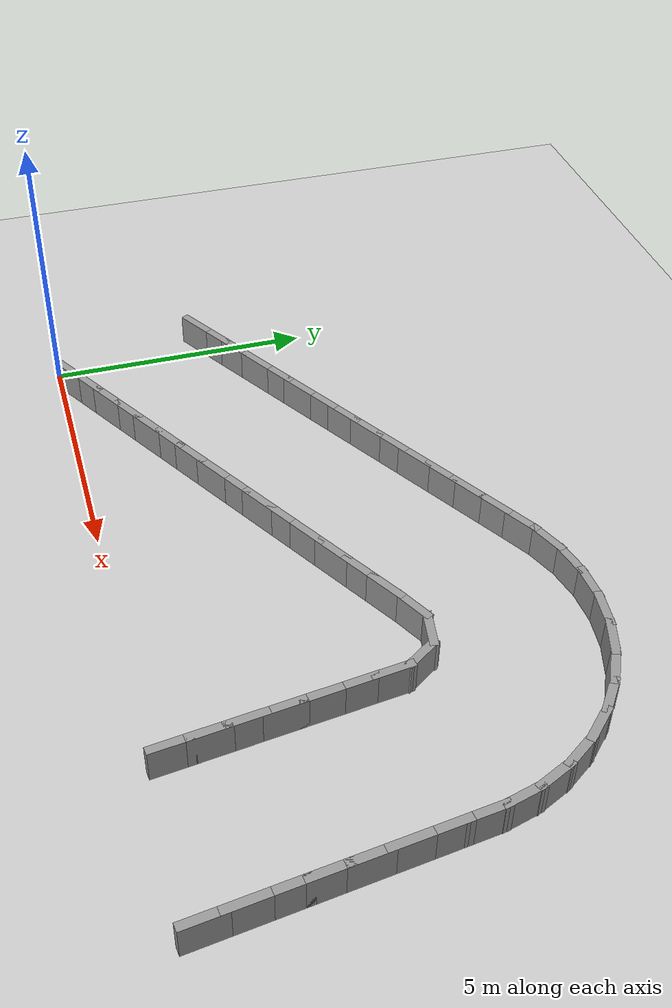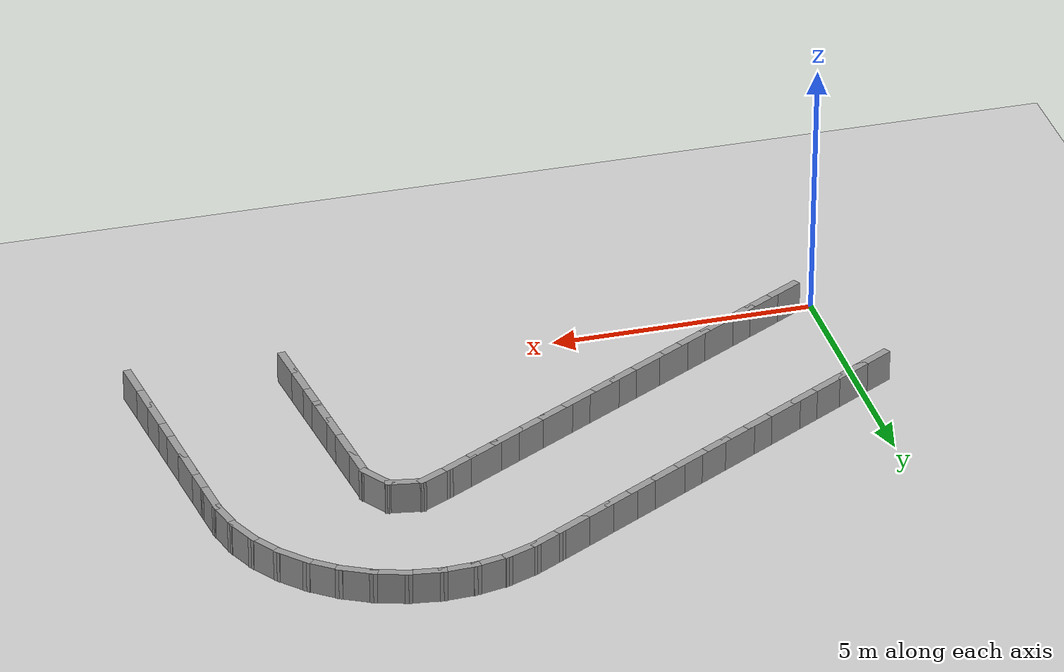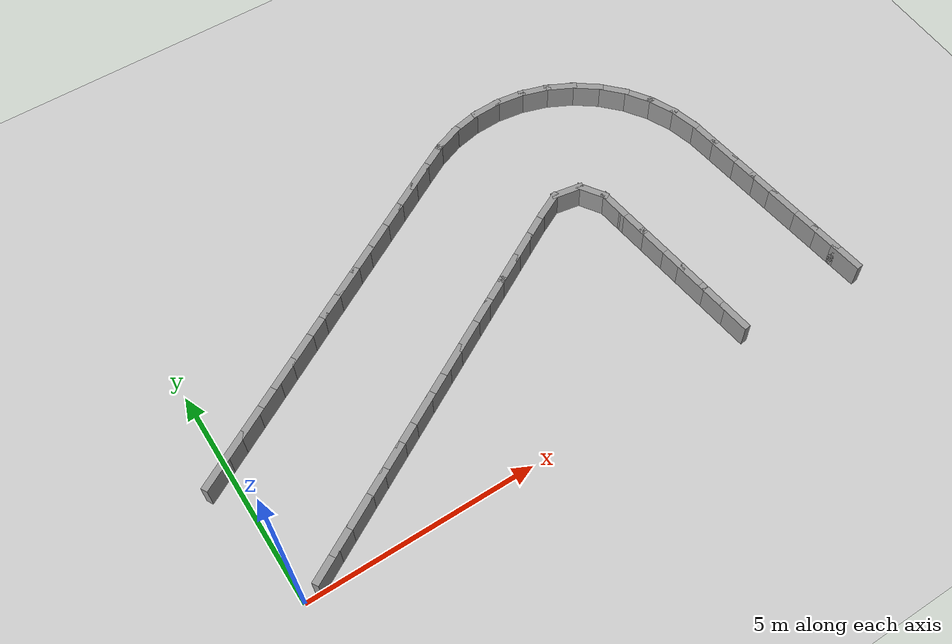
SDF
<sdf version="1.7">
 <world name="default">
  <model name="ground_plane">
   <static>1</static>
   <link name="link">
    <collision name="collision">
     <geometry><plane><normal>0 0 1</normal><size>100 100</size></plane></geometry>
     <surface><friction><ode><mu>100</mu><mu2>50</mu2></ode></friction></surface>
    </collision>
    <visual name="visual">
     <cast_shadows>0</cast_shadows>
     <geometry><plane><normal>0 0 1</normal><size>100 100</size></plane></geometry>
     <material>
      <script><uri>file://media/materials/scripts/gazebo.material</uri><name>Gazebo/Grey</name></script>
     </material>
    </visual>
   </link>
  </model>
  <model name="rand_turn_11">
   <link name="Wall_11">
    <collision name="Wall_11_Collision">
     <geometry><box><size>0.7500 0.1500 0.6000</size></box></geometry>
     <pose>0 0 0.3000 0 -0 0</pose>
    </collision>
    <visual name="Wall_11_Visual">
     <pose>0 0 0.3000 0 -0 0</pose>
     <geometry><box><size>0.7500 0.1500 0.6000</size></box></geometry>
     <material>
      <script><uri>file://media/materials/scripts/gazebo.material</uri><name>Gazebo/Grey</name></script>
      <ambient>1 1 1 1</ambient>
     </material>
    </visual>
    <pose>-0.2502 2.9254 0 0 -0 0.51695</pose>
   </link>
   <link name="Wall_12">
    <collision name="Wall_12_Collision">
     <geometry><box><size>0.7500 0.1500 0.6000</size></box></geometry>
     <pose>0 0 0.3000 0 -0 0</pose>
    </collision>
    <visual name="Wall_12_Visual">
     <pose>0 0 0.3000 0 -0 0</pose>
     <geometry><box><size>0.7500 0.1500 0.6000</size></box></geometry>
     <material>
      <script><uri>file://media/materials/scripts/gazebo.material</uri><name>Gazebo/Grey</name></script>
      <ambient>1 1 1 1</ambient>
     </material>
    </visual>
    <pose>0.2714 3.2220 0 0 -0 0.51695</pose>
   </link>
   <link name="Wall_13">
    <collision name="Wall_13_Collision">
     <geometry><box><size>0.7500 0.1500 0.6000</size></box></geometry>
     <pose>0 0 0.3000 0 -0 0</pose>
    </collision>
    <visual name="Wall_13_Visual">
     <pose>0 0 0.3000 0 -0 0</pose>
     <geometry><box><size>0.7500 0.1500 0.6000</size></box></geometry>
     <material>
      <script><uri>file://media/materials/scripts/gazebo.material</uri><name>Gazebo/Grey</name></script>
      <ambient>1 1 1 1</ambient>
     </material>
    </visual>
    <pose>0.7930 3.5185 0 0 -0 0.51695</pose>
   </link>
   <link name="Wall_14">
    <collision name="Wall_14_Collision">
     <geometry><box><size>0.7500 0.1500 0.6000</size></box></geometry>
     <pose>0 0 0.3000 0 -0 0</pose>
    </collision>
    <visual name="Wall_14_Visual">
     <pose>0 0 0.3000 0 -0 0</pose>
     <geometry><box><size>0.7500 0.1500 0.6000</size></box></geometry>
     <material>
      <script><uri>file://media/materials/scripts/gazebo.material</uri><name>Gazebo/Grey</name></script>
      <ambient>1 1 1 1</ambient>
     </material>
    </visual>
    <pose>1.3146 3.8150 0 0 -0 0.51695</pose>
   </link>
   <link name="Wall_15">
    <collision name="Wall_15_Collision">
     <geometry><box><size>0.7500 0.1500 0.6000</size></box></geometry>
     <pose>0 0 0.3000 0 -0 0</pose>
    </collision>
    <visual name="Wall_15_Visual">
     <pose>0 0 0.3000 0 -0 0</pose>
     <geometry><box><size>0.7500 0.1500 0.6000</size></box></geometry>
     <material>
      <script><uri>file://media/materials/scripts/gazebo.material</uri><name>Gazebo/Grey</name></script>
      <ambient>1 1 1 1</ambient>
     </material>
    </visual>
    <pose>1.8362 4.1116 0 0 -0 0.51695</pose>
   </link>
   <link name="Wall_16">
    <collision name="Wall_16_Collision">
     <geometry><box><size>0.7500 0.1500 0.6000</size></box></geometry>
     <pose>0 0 0.3000 0 -0 0</pose>
    </collision>
    <visual name="Wall_16_Visual">
     <pose>0 0 0.3000 0 -0 0</pose>
     <geometry><box><size>0.7500 0.1500 0.6000</size></box></geometry>
     <material>
      <script><uri>file://media/materials/scripts/gazebo.material</uri><name>Gazebo/Grey</name></script>
      <ambient>1 1 1 1</ambient>
     </material>
    </visual>
    <pose>2.3578 4.4081 0 0 -0 0.51695</pose>
   </link>
   <link name="Wall_17">
    <collision name="Wall_17_Collision">
     <geometry><box><size>0.7500 0.1500 0.6000</size></box></geometry>
     <pose>0 0 0.3000 0 -0 0</pose>
    </collision>
    <visual name="Wall_17_Visual">
     <pose>0 0 0.3000 0 -0 0</pose>
     <geometry><box><size>0.7500 0.1500 0.6000</size></box></geometry>
     <material>
      <script><uri>file://media/materials/scripts/gazebo.material</uri><name>Gazebo/Grey</name></script>
      <ambient>1 1 1 1</ambient>
     </material>
    </visual>
    <pose>2.8794 4.7047 0 0 -0 0.51695</pose>
   </link>
   <link name="Wall_18">
    <collision name="Wall_18_Collision">
     <geometry><box><size>0.7500 0.1500 0.6000</size></box></geometry>
     <pose>0 0 0.3000 0 -0 0</pose>
    </collision>
    <visual name="Wall_18_Visual">
     <pose>0 0 0.3000 0 -0 0</pose>
     <geometry><box><size>0.7500 0.1500 0.6000</size></box></geometry>
     <material>
      <script><uri>file://media/materials/scripts/gazebo.material</uri><name>Gazebo/Grey</name></script>
      <ambient>1 1 1 1</ambient>
     </material>
    </visual>
    <pose>3.4010 5.0012 0 0 -0 0.51695</pose>
   </link>
   <link name="Wall_19">
    <collision name="Wall_19_Collision">
     <geometry><box><size>0.7500 0.1500 0.6000</size></box></geometry>
     <pose>0 0 0.3000 0 -0 0</pose>
    </collision>
    <visual name="Wall_19_Visual">
     <pose>0 0 0.3000 0 -0 0</pose>
     <geometry><box><size>0.7500 0.1500 0.6000</size></box></geometry>
     <material>
      <script><uri>file://media/materials/scripts/gazebo.material</uri><name>Gazebo/Grey</name></script>
      <ambient>1 1 1 1</ambient>
     </material>
    </visual>
    <pose>3.9226 5.2977 0 0 -0 0.51695</pose>
   </link>
   <link name="Wall_20">
    <collision name="Wall_20_Collision">
     <geometry><box><size>0.7500 0.1500 0.6000</size></box></geometry>
     <pose>0 0 0.3000 0 -0 0</pose>
    </collision>
    <visual name="Wall_20_Visual">
     <pose>0 0 0.3000 0 -0 0</pose>
     <geometry><box><size>0.7500 0.1500 0.6000</size></box></geometry>
     <material>
      <script><uri>file://media/materials/scripts/gazebo.material</uri><name>Gazebo/Grey</name></script>
      <ambient>1 1 1 1</ambient>
     </material>
    </visual>
    <pose>4.4442 5.5943 0 0 -0 0.51695</pose>
   </link>
   <link name="Wall_21">
    <collision name="Wall_21_Collision">
     <geometry><box><size>0.7500 0.1500 0.6000</size></box></geometry>
     <pose>0 0 0.3000 0 -0 0</pose>
    </collision>
    <visual name="Wall_21_Visual">
     <pose>0 0 0.3000 0 -0 0</pose>
     <geometry><box><size>0.7500 0.1500 0.6000</size></box></geometry>
     <material>
      <script><uri>file://media/materials/scripts/gazebo.material</uri><name>Gazebo/Grey</name></script>
      <ambient>1 1 1 1</ambient>
     </material>
    </visual>
    <pose>4.9658 5.8908 0 0 -0 0.51695</pose>
   </link>
   <link name="Wall_22">
    <collision name="Wall_22_Collision">
     <geometry><box><size>0.7500 0.1500 0.6000</size></box></geometry>
     <pose>0 0 0.3000 0 -0 0</pose>
    </collision>
    <visual name="Wall_22_Visual">
     <pose>0 0 0.3000 0 -0 0</pose>
     <geometry><box><size>0.7500 0.1500 0.6000</size></box></geometry>
     <material>
      <script><uri>file://media/materials/scripts/gazebo.material</uri><name>Gazebo/Grey</name></script>
      <ambient>1 1 1 1</ambient>
     </material>
    </visual>
    <pose>5.4874 6.1874 0 0 -0 0.51695</pose>
   </link>
   <link name="Wall_23">
    <collision name="Wall_23_Collision">
     <geometry><box><size>0.7500 0.1500 0.6000</size></box></geometry>
     <pose>0 0 0.3000 0 -0 0</pose>
    </collision>
    <visual name="Wall_23_Visual">
     <pose>0 0 0.3000 0 -0 0</pose>
     <geometry><box><size>0.7500 0.1500 0.6000</size></box></geometry>
     <material>
      <script><uri>file://media/materials/scripts/gazebo.material</uri><name>Gazebo/Grey</name></script>
      <ambient>1 1 1 1</ambient>
     </material>
    </visual>
    <pose>6.0089 6.4839 0 0 -0 0.51695</pose>
   </link>
   <link name="Wall_24">
    <collision name="Wall_24_Collision">
     <geometry><box><size>0.7500 0.1500 0.6000</size></box></geometry>
     <pose>0 0 0.3000 0 -0 0</pose>
    </collision>
    <visual name="Wall_24_Visual">
     <pose>0 0 0.3000 0 -0 0</pose>
     <geometry><box><size>0.7500 0.1500 0.6000</size></box></geometry>
     <material>
      <script><uri>file://media/materials/scripts/gazebo.material</uri><name>Gazebo/Grey</name></script>
      <ambient>1 1 1 1</ambient>
     </material>
    </visual>
    <pose>6.5305 6.7805 0 0 -0 0.51695</pose>
   </link>
   <link name="Wall_25">
    <collision name="Wall_25_Collision">
     <geometry><box><size>0.7499 0.1500 0.6000</size></box></geometry>
     <pose>0 0 0.3000 0 -0 0</pose>
    </collision>
    <visual name="Wall_25_Visual">
     <pose>0 0 0.3000 0 -0 0</pose>
     <geometry><box><size>0.7499 0.1500 0.6000</size></box></geometry>
     <material>
      <script><uri>file://media/materials/scripts/gazebo.material</uri><name>Gazebo/Grey</name></script>
      <ambient>1 1 1 1</ambient>
     </material>
    </visual>
    <pose>7.0536 7.0742 0 0 -0 0.50648</pose>
   </link>
   <link name="Wall_26">
    <collision name="Wall_26_Collision">
     <geometry><box><size>0.7492 0.1500 0.6000</size></box></geometry>
     <pose>0 0 0.3000 0 -0 0</pose>
    </collision>
    <visual name="Wall_26_Visual">
     <pose>0 0 0.3000 0 -0 0</pose>
     <geometry><box><size>0.7492 0.1500 0.6000</size></box></geometry>
     <material>
      <script><uri>file://media/materials/scripts/gazebo.material</uri><name>Gazebo/Grey</name></script>
      <ambient>1 1 1 1</ambient>
     </material>
    </visual>
    <pose>7.5946 7.3297 0 0 -0 0.37580</pose>
   </link>
   <link name="Wall_27">
    <collision name="Wall_27_Collision">
     <geometry><box><size>0.7492 0.1500 0.6000</size></box></geometry>
     <pose>0 0 0.3000 0 -0 0</pose>
    </collision>
    <visual name="Wall_27_Visual">
     <pose>0 0 0.3000 0 -0 0</pose>
     <geometry><box><size>0.7492 0.1500 0.6000</size></box></geometry>
     <material>
      <script><uri>file://media/materials/scripts/gazebo.material</uri><name>Gazebo/Grey</name></script>
      <ambient>1 1 1 1</ambient>
     </material>
    </visual>
    <pose>8.1667 7.5008 0 0 -0 0.20546</pose>
   </link>
   <link name="Wall_28">
    <collision name="Wall_28_Collision">
     <geometry><box><size>0.7492 0.1500 0.6000</size></box></geometry>
     <pose>0 0 0.3000 0 -0 0</pose>
    </collision>
    <visual name="Wall_28_Visual">
     <pose>0 0 0.3000 0 -0 0</pose>
     <geometry><box><size>0.7492 0.1500 0.6000</size></box></geometry>
     <material>
      <script><uri>file://media/materials/scripts/gazebo.material</uri><name>Gazebo/Grey</name></script>
      <ambient>1 1 1 1</ambient>
     </material>
    </visual>
    <pose>8.7594 7.5732 0 0 -0 0.03778</pose>
   </link>
   <link name="Wall_29">
    <collision name="Wall_29_Collision">
     <geometry><box><size>0.7493 0.1500 0.6000</size></box></geometry>
     <pose>0 0 0.3000 0 -0 0</pose>
    </collision>
    <visual name="Wall_29_Visual">
     <pose>0 0 0.3000 0 -0 0</pose>
     <geometry><box><size>0.7493 0.1500 0.6000</size></box></geometry>
     <material>
      <script><uri>file://media/materials/scripts/gazebo.material</uri><name>Gazebo/Grey</name></script>
      <ambient>1 1 1 1</ambient>
     </material>
    </visual>
    <pose>9.3557 7.5445 0 0 -0 -0.13394</pose>
   </link>
   <link name="Wall_30">
    <collision name="Wall_30_Collision">
     <geometry><box><size>0.7492 0.1500 0.6000</size></box></geometry>
     <pose>0 0 0.3000 0 -0 0</pose>
    </collision>
    <visual name="Wall_30_Visual">
     <pose>0 0 0.3000 0 -0 0</pose>
     <geometry><box><size>0.7492 0.1500 0.6000</size></box></geometry>
     <material>
      <script><uri>file://media/materials/scripts/gazebo.material</uri><name>Gazebo/Grey</name></script>
      <ambient>1 1 1 1</ambient>
     </material>
    </visual>
    <pose>9.9386 7.4153 0 0 -0 -0.30248</pose>
   </link>
   <link name="Wall_31">
    <collision name="Wall_31_Collision">
     <geometry><box><size>0.7493 0.1500 0.6000</size></box></geometry>
     <pose>0 0 0.3000 0 -0 0</pose>
    </collision>
    <visual name="Wall_31_Visual">
     <pose>0 0 0.3000 0 -0 0</pose>
     <geometry><box><size>0.7493 0.1500 0.6000</size></box></geometry>
     <material>
      <script><uri>file://media/materials/scripts/gazebo.material</uri><name>Gazebo/Grey</name></script>
      <ambient>1 1 1 1</ambient>
     </material>
    </visual>
    <pose>10.4916 7.1900 0 0 -0 -0.47110</pose>
   </link>
   <link name="Wall_32">
    <collision name="Wall_32_Collision">
     <geometry><box><size>0.7492 0.1500 0.6000</size></box></geometry>
     <pose>0 0 0.3000 0 -0 0</pose>
    </collision>
    <visual name="Wall_32_Visual">
     <pose>0 0 0.3000 0 -0 0</pose>
     <geometry><box><size>0.7492 0.1500 0.6000</size></box></geometry>
     <material>
      <script><uri>file://media/materials/scripts/gazebo.material</uri><name>Gazebo/Grey</name></script>
      <ambient>1 1 1 1</ambient>
     </material>
    </visual>
    <pose>10.9984 6.8745 0 0 -0 -0.64274</pose>
   </link>
   <link name="Wall_33">
    <collision name="Wall_33_Collision">
     <geometry><box><size>0.7492 0.1500 0.6000</size></box></geometry>
     <pose>0 0 0.3000 0 -0 0</pose>
    </collision>
    <visual name="Wall_33_Visual">
     <pose>0 0 0.3000 0 -0 0</pose>
     <geometry><box><size>0.7492 0.1500 0.6000</size></box></geometry>
     <material>
      <script><uri>file://media/materials/scripts/gazebo.material</uri><name>Gazebo/Grey</name></script>
      <ambient>1 1 1 1</ambient>
     </material>
    </visual>
    <pose>11.4448 6.4778 0 0 -0 -0.81042</pose>
   </link>
   <link name="Wall_34">
    <collision name="Wall_34_Collision">
     <geometry><box><size>0.7492 0.1500 0.6000</size></box></geometry>
     <pose>0 0 0.3000 0 -0 0</pose>
    </collision>
    <visual name="Wall_34_Visual">
     <pose>0 0 0.3000 0 -0 0</pose>
     <geometry><box><size>0.7492 0.1500 0.6000</size></box></geometry>
     <material>
      <script><uri>file://media/materials/scripts/gazebo.material</uri><name>Gazebo/Grey</name></script>
      <ambient>1 1 1 1</ambient>
     </material>
    </visual>
    <pose>11.8179 6.0117 0 0 -0 -0.98085</pose>
   </link>
   <link name="Wall_35">
    <collision name="Wall_35_Collision">
     <geometry><box><size>0.7492 0.1500 0.6000</size></box></geometry>
     <pose>0 0 0.3000 0 -0 0</pose>
    </collision>
    <visual name="Wall_35_Visual">
     <pose>0 0 0.3000 0 -0 0</pose>
     <geometry><box><size>0.7492 0.1500 0.6000</size></box></geometry>
     <material>
      <script><uri>file://media/materials/scripts/gazebo.material</uri><name>Gazebo/Grey</name></script>
      <ambient>1 1 1 1</ambient>
     </material>
    </visual>
    <pose>12.1068 5.4892 0 0 -0 -1.15068</pose>
   </link>
   <link name="Wall_36">
    <collision name="Wall_36_Collision">
     <geometry><box><size>0.7492 0.1500 0.6000</size></box></geometry>
     <pose>0 0 0.3000 0 -0 0</pose>
    </collision>
    <visual name="Wall_36_Visual">
     <pose>0 0 0.3000 0 -0 0</pose>
     <geometry><box><size>0.7492 0.1500 0.6000</size></box></geometry>
     <material>
      <script><uri>file://media/materials/scripts/gazebo.material</uri><name>Gazebo/Grey</name></script>
      <ambient>1 1 1 1</ambient>
     </material>
    </visual>
    <pose>12.3037 4.9255 0 0 -0 -1.31870</pose>
   </link>
   <link name="Wall_37">
    <collision name="Wall_37_Collision">
     <geometry><box><size>0.7500 0.1500 0.6000</size></box></geometry>
     <pose>0 0 0.3000 0 -0 0</pose>
    </collision>
    <visual name="Wall_37_Visual">
     <pose>0 0 0.3000 0 -0 0</pose>
     <geometry><box><size>0.7500 0.1500 0.6000</size></box></geometry>
     <material>
      <script><uri>file://media/materials/scripts/gazebo.material</uri><name>Gazebo/Grey</name></script>
      <ambient>1 1 1 1</ambient>
     </material>
    </visual>
    <pose>12.4158 4.3377 0 0 -0 -1.44592</pose>
   </link>
   <link name="Wall_38">
    <collision name="Wall_38_Collision">
     <geometry><box><size>0.7500 0.1500 0.6000</size></box></geometry>
     <pose>0 0 0.3000 0 -0 0</pose>
    </collision>
    <visual name="Wall_38_Visual">
     <pose>0 0 0.3000 0 -0 0</pose>
     <geometry><box><size>0.7500 0.1500 0.6000</size></box></geometry>
     <material>
      <script><uri>file://media/materials/scripts/gazebo.material</uri><name>Gazebo/Grey</name></script>
      <ambient>1 1 1 1</ambient>
     </material>
    </visual>
    <pose>12.4898 3.7423 0 0 -0 -1.44849</pose>
   </link>
   <link name="Wall_39">
    <collision name="Wall_39_Collision">
     <geometry><box><size>0.7500 0.1500 0.6000</size></box></geometry>
     <pose>0 0 0.3000 0 -0 0</pose>
    </collision>
    <visual name="Wall_39_Visual">
     <pose>0 0 0.3000 0 -0 0</pose>
     <geometry><box><size>0.7500 0.1500 0.6000</size></box></geometry>
     <material>
      <script><uri>file://media/materials/scripts/gazebo.material</uri><name>Gazebo/Grey</name></script>
      <ambient>1 1 1 1</ambient>
     </material>
    </visual>
    <pose>12.5630 3.1468 0 0 -0 -1.44849</pose>
   </link>
   <link name="Wall_40">
    <collision name="Wall_40_Collision">
     <geometry><box><size>0.7500 0.1500 0.6000</size></box></geometry>
     <pose>0 0 0.3000 0 -0 0</pose>
    </collision>
    <visual name="Wall_40_Visual">
     <pose>0 0 0.3000 0 -0 0</pose>
     <geometry><box><size>0.7500 0.1500 0.6000</size></box></geometry>
     <material>
      <script><uri>file://media/materials/scripts/gazebo.material</uri><name>Gazebo/Grey</name></script>
      <ambient>1 1 1 1</ambient>
     </material>
    </visual>
    <pose>12.6362 2.5513 0 0 -0 -1.44849</pose>
   </link>
   <link name="Wall_41">
    <collision name="Wall_41_Collision">
     <geometry><box><size>0.7500 0.1500 0.6000</size></box></geometry>
     <pose>0 0 0.3000 0 -0 0</pose>
    </collision>
    <visual name="Wall_41_Visual">
     <pose>0 0 0.3000 0 -0 0</pose>
     <geometry><box><size>0.7500 0.1500 0.6000</size></box></geometry>
     <material>
      <script><uri>file://media/materials/scripts/gazebo.material</uri><name>Gazebo/Grey</name></script>
      <ambient>1 1 1 1</ambient>
     </material>
    </visual>
    <pose>12.7094 1.9557 0 0 -0 -1.44849</pose>
   </link>
   <link name="Wall_42">
    <collision name="Wall_42_Collision">
     <geometry><box><size>0.7500 0.1500 0.6000</size></box></geometry>
     <pose>0 0 0.3000 0 -0 0</pose>
    </collision>
    <visual name="Wall_42_Visual">
     <pose>0 0 0.3000 0 -0 0</pose>
     <geometry><box><size>0.7500 0.1500 0.6000</size></box></geometry>
     <material>
      <script><uri>file://media/materials/scripts/gazebo.material</uri><name>Gazebo/Grey</name></script>
      <ambient>1 1 1 1</ambient>
     </material>
    </visual>
    <pose>12.7826 1.3602 0 0 -0 -1.44849</pose>
   </link>
   <link name="Wall_43">
    <collision name="Wall_43_Collision">
     <geometry><box><size>0.7500 0.1500 0.6000</size></box></geometry>
     <pose>0 0 0.3000 0 -0 0</pose>
    </collision>
    <visual name="Wall_43_Visual">
     <pose>0 0 0.3000 0 -0 0</pose>
     <geometry><box><size>0.7500 0.1500 0.6000</size></box></geometry>
     <material>
      <script><uri>file://media/materials/scripts/gazebo.material</uri><name>Gazebo/Grey</name></script>
      <ambient>1 1 1 1</ambient>
     </material>
    </visual>
    <pose>12.8558 0.7647 0 0 -0 -1.44849</pose>
   </link>
   <link name="Wall_44">
    <collision name="Wall_44_Collision">
     <geometry><box><size>0.7500 0.1500 0.6000</size></box></geometry>
     <pose>0 0 0.3000 0 -0 0</pose>
    </collision>
    <visual name="Wall_44_Visual">
     <pose>0 0 0.3000 0 -0 0</pose>
     <geometry><box><size>0.7500 0.1500 0.6000</size></box></geometry>
     <material>
      <script><uri>file://media/materials/scripts/gazebo.material</uri><name>Gazebo/Grey</name></script>
      <ambient>1 1 1 1</ambient>
     </material>
    </visual>
    <pose>12.9290 0.1692 0 0 -0 -1.44849</pose>
   </link>
   <link name="Wall_109">
    <collision name="Wall_109_Collision">
     <geometry><box><size>0.7500 0.1500 0.6000</size></box></geometry>
     <pose>0 0 0.3000 0 -0 0</pose>
    </collision>
    <visual name="Wall_109_Visual">
     <pose>0 0 0.3000 0 -0 0</pose>
     <geometry><box><size>0.7500 0.1500 0.6000</size></box></geometry>
     <material>
      <script><uri>file://media/materials/scripts/gazebo.material</uri><name>Gazebo/Grey</name></script>
      <ambient>1 1 1 1</ambient>
     </material>
    </visual>
    <pose>0.6161 0.1876 0 0 -0 0.51695</pose>
   </link>
   <link name="Wall_110">
    <collision name="Wall_110_Collision">
     <geometry><box><size>0.7500 0.1500 0.6000</size></box></geometry>
     <pose>0 0 0.3000 0 -0 0</pose>
    </collision>
    <visual name="Wall_110_Visual">
     <pose>0 0 0.3000 0 -0 0</pose>
     <geometry><box><size>0.7500 0.1500 0.6000</size></box></geometry>
     <material>
      <script><uri>file://media/materials/scripts/gazebo.material</uri><name>Gazebo/Grey</name></script>
      <ambient>1 1 1 1</ambient>
     </material>
    </visual>
    <pose>1.1377 0.4842 0 0 -0 0.51695</pose>
   </link>
   <link name="Wall_111">
    <collision name="Wall_111_Collision">
     <geometry><box><size>0.7500 0.1500 0.6000</size></box></geometry>
     <pose>0 0 0.3000 0 -0 0</pose>
    </collision>
    <visual name="Wall_111_Visual">
     <pose>0 0 0.3000 0 -0 0</pose>
     <geometry><box><size>0.7500 0.1500 0.6000</size></box></geometry>
     <material>
      <script><uri>file://media/materials/scripts/gazebo.material</uri><name>Gazebo/Grey</name></script>
      <ambient>1 1 1 1</ambient>
     </material>
    </visual>
    <pose>1.6593 0.7807 0 0 -0 0.51695</pose>
   </link>
   <link name="Wall_112">
    <collision name="Wall_112_Collision">
     <geometry><box><size>0.7500 0.1500 0.6000</size></box></geometry>
     <pose>0 0 0.3000 0 -0 0</pose>
    </collision>
    <visual name="Wall_112_Visual">
     <pose>0 0 0.3000 0 -0 0</pose>
     <geometry><box><size>0.7500 0.1500 0.6000</size></box></geometry>
     <material>
      <script><uri>file://media/materials/scripts/gazebo.material</uri><name>Gazebo/Grey</name></script>
      <ambient>1 1 1 1</ambient>
     </material>
    </visual>
    <pose>2.1809 1.0773 0 0 -0 0.51695</pose>
   </link>
   <link name="Wall_113">
    <collision name="Wall_113_Collision">
     <geometry><box><size>0.7500 0.1500 0.6000</size></box></geometry>
     <pose>0 0 0.3000 0 -0 0</pose>
    </collision>
    <visual name="Wall_113_Visual">
     <pose>0 0 0.3000 0 -0 0</pose>
     <geometry><box><size>0.7500 0.1500 0.6000</size></box></geometry>
     <material>
      <script><uri>file://media/materials/scripts/gazebo.material</uri><name>Gazebo/Grey</name></script>
      <ambient>1 1 1 1</ambient>
     </material>
    </visual>
    <pose>2.7025 1.3738 0 0 -0 0.51695</pose>
   </link>
   <link name="Wall_114">
    <collision name="Wall_114_Collision">
     <geometry><box><size>0.7500 0.1500 0.6000</size></box></geometry>
     <pose>0 0 0.3000 0 -0 0</pose>
    </collision>
    <visual name="Wall_114_Visual">
     <pose>0 0 0.3000 0 -0 0</pose>
     <geometry><box><size>0.7500 0.1500 0.6000</size></box></geometry>
     <material>
      <script><uri>file://media/materials/scripts/gazebo.material</uri><name>Gazebo/Grey</name></script>
      <ambient>1 1 1 1</ambient>
     </material>
    </visual>
    <pose>3.2241 1.6704 0 0 -0 0.51695</pose>
   </link>
   <link name="Wall_115">
    <collision name="Wall_115_Collision">
     <geometry><box><size>0.7500 0.1500 0.6000</size></box></geometry>
     <pose>0 0 0.3000 0 -0 0</pose>
    </collision>
    <visual name="Wall_115_Visual">
     <pose>0 0 0.3000 0 -0 0</pose>
     <geometry><box><size>0.7500 0.1500 0.6000</size></box></geometry>
     <material>
      <script><uri>file://media/materials/scripts/gazebo.material</uri><name>Gazebo/Grey</name></script>
      <ambient>1 1 1 1</ambient>
     </material>
    </visual>
    <pose>3.7457 1.9669 0 0 -0 0.51695</pose>
   </link>
   <link name="Wall_116">
    <collision name="Wall_116_Collision">
     <geometry><box><size>0.7500 0.1500 0.6000</size></box></geometry>
     <pose>0 0 0.3000 0 -0 0</pose>
    </collision>
    <visual name="Wall_116_Visual">
     <pose>0 0 0.3000 0 -0 0</pose>
     <geometry><box><size>0.7500 0.1500 0.6000</size></box></geometry>
     <material>
      <script><uri>file://media/materials/scripts/gazebo.material</uri><name>Gazebo/Grey</name></script>
      <ambient>1 1 1 1</ambient>
     </material>
    </visual>
    <pose>4.2673 2.2634 0 0 -0 0.51695</pose>
   </link>
   <link name="Wall_117">
    <collision name="Wall_117_Collision">
     <geometry><box><size>0.7500 0.1500 0.6000</size></box></geometry>
     <pose>0 0 0.3000 0 -0 0</pose>
    </collision>
    <visual name="Wall_117_Visual">
     <pose>0 0 0.3000 0 -0 0</pose>
     <geometry><box><size>0.7500 0.1500 0.6000</size></box></geometry>
     <material>
      <script><uri>file://media/materials/scripts/gazebo.material</uri><name>Gazebo/Grey</name></script>
      <ambient>1 1 1 1</ambient>
     </material>
    </visual>
    <pose>4.7889 2.5600 0 0 -0 0.51695</pose>
   </link>
   <link name="Wall_118">
    <collision name="Wall_118_Collision">
     <geometry><box><size>0.7500 0.1500 0.6000</size></box></geometry>
     <pose>0 0 0.3000 0 -0 0</pose>
    </collision>
    <visual name="Wall_118_Visual">
     <pose>0 0 0.3000 0 -0 0</pose>
     <geometry><box><size>0.7500 0.1500 0.6000</size></box></geometry>
     <material>
      <script><uri>file://media/materials/scripts/gazebo.material</uri><name>Gazebo/Grey</name></script>
      <ambient>1 1 1 1</ambient>
     </material>
    </visual>
    <pose>5.3105 2.8565 0 0 -0 0.51695</pose>
   </link>
   <link name="Wall_119">
    <collision name="Wall_119_Collision">
     <geometry><box><size>0.7500 0.1500 0.6000</size></box></geometry>
     <pose>0 0 0.3000 0 -0 0</pose>
    </collision>
    <visual name="Wall_119_Visual">
     <pose>0 0 0.3000 0 -0 0</pose>
     <geometry><box><size>0.7500 0.1500 0.6000</size></box></geometry>
     <material>
      <script><uri>file://media/materials/scripts/gazebo.material</uri><name>Gazebo/Grey</name></script>
      <ambient>1 1 1 1</ambient>
     </material>
    </visual>
    <pose>5.8321 3.1531 0 0 -0 0.51695</pose>
   </link>
   <link name="Wall_120">
    <collision name="Wall_120_Collision">
     <geometry><box><size>0.7500 0.1500 0.6000</size></box></geometry>
     <pose>0 0 0.3000 0 -0 0</pose>
    </collision>
    <visual name="Wall_120_Visual">
     <pose>0 0 0.3000 0 -0 0</pose>
     <geometry><box><size>0.7500 0.1500 0.6000</size></box></geometry>
     <material>
      <script><uri>file://media/materials/scripts/gazebo.material</uri><name>Gazebo/Grey</name></script>
      <ambient>1 1 1 1</ambient>
     </material>
    </visual>
    <pose>6.3537 3.4496 0 0 -0 0.51695</pose>
   </link>
   <link name="Wall_121">
    <collision name="Wall_121_Collision">
     <geometry><box><size>0.7500 0.1500 0.6000</size></box></geometry>
     <pose>0 0 0.3000 0 -0 0</pose>
    </collision>
    <visual name="Wall_121_Visual">
     <pose>0 0 0.3000 0 -0 0</pose>
     <geometry><box><size>0.7500 0.1500 0.6000</size></box></geometry>
     <material>
      <script><uri>file://media/materials/scripts/gazebo.material</uri><name>Gazebo/Grey</name></script>
      <ambient>1 1 1 1</ambient>
     </material>
    </visual>
    <pose>6.8753 3.7461 0 0 -0 0.51695</pose>
   </link>
   <link name="Wall_122">
    <collision name="Wall_122_Collision">
     <geometry><box><size>0.7500 0.1500 0.6000</size></box></geometry>
     <pose>0 0 0.3000 0 -0 0</pose>
    </collision>
    <visual name="Wall_122_Visual">
     <pose>0 0 0.3000 0 -0 0</pose>
     <geometry><box><size>0.7500 0.1500 0.6000</size></box></geometry>
     <material>
      <script><uri>file://media/materials/scripts/gazebo.material</uri><name>Gazebo/Grey</name></script>
      <ambient>1 1 1 1</ambient>
     </material>
    </visual>
    <pose>7.3968 4.0427 0 0 -0 0.51695</pose>
   </link>
   <link name="Wall_123">
    <collision name="Wall_123_Collision">
     <geometry><box><size>0.7500 0.1500 0.6000</size></box></geometry>
     <pose>0 0 0.3000 0 -0 0</pose>
    </collision>
    <visual name="Wall_123_Visual">
     <pose>0 0 0.3000 0 -0 0</pose>
     <geometry><box><size>0.7500 0.1500 0.6000</size></box></geometry>
     <material>
      <script><uri>file://media/materials/scripts/gazebo.material</uri><name>Gazebo/Grey</name></script>
      <ambient>1 1 1 1</ambient>
     </material>
    </visual>
    <pose>7.9184 4.3392 0 0 -0 0.51695</pose>
   </link>
   <link name="Wall_124">
    <collision name="Wall_124_Collision">
     <geometry><box><size>0.7481 0.1500 0.6000</size></box></geometry>
     <pose>0 0 0.3000 0 -0 0</pose>
    </collision>
    <visual name="Wall_124_Visual">
     <pose>0 0 0.3000 0 -0 0</pose>
     <geometry><box><size>0.7481 0.1500 0.6000</size></box></geometry>
     <material>
      <script><uri>file://media/materials/scripts/gazebo.material</uri><name>Gazebo/Grey</name></script>
      <ambient>1 1 1 1</ambient>
     </material>
    </visual>
    <pose>8.4457 4.6233 0 0 -0 0.47131</pose>
   </link>
   <link name="Wall_125">
    <collision name="Wall_125_Collision">
     <geometry><box><size>0.7332 0.1500 0.6000</size></box></geometry>
     <pose>0 0 0.3000 0 -0 0</pose>
    </collision>
    <visual name="Wall_125_Visual">
     <pose>0 0 0.3000 0 -0 0</pose>
     <geometry><box><size>0.7332 0.1500 0.6000</size></box></geometry>
     <material>
      <script><uri>file://media/materials/scripts/gazebo.material</uri><name>Gazebo/Grey</name></script>
      <ambient>1 1 1 1</ambient>
     </material>
    </visual>
    <pose>8.9997 4.7106 0 0 -0 -0.16714</pose>
   </link>
   <link name="Wall_126">
    <collision name="Wall_126_Collision">
     <geometry><box><size>0.7330 0.1500 0.6000</size></box></geometry>
     <pose>0 0 0.3000 0 -0 0</pose>
    </collision>
    <visual name="Wall_126_Visual">
     <pose>0 0 0.3000 0 -0 0</pose>
     <geometry><box><size>0.7330 0.1500 0.6000</size></box></geometry>
     <material>
      <script><uri>file://media/materials/scripts/gazebo.material</uri><name>Gazebo/Grey</name></script>
      <ambient>1 1 1 1</ambient>
     </material>
    </visual>
    <pose>9.4476 4.4186 0 0 -0 -0.98843</pose>
   </link>
   <link name="Wall_127">
    <collision name="Wall_127_Collision">
     <geometry><box><size>0.7500 0.1500 0.6000</size></box></geometry>
     <pose>0 0 0.3000 0 -0 0</pose>
    </collision>
    <visual name="Wall_127_Visual">
     <pose>0 0 0.3000 0 -0 0</pose>
     <geometry><box><size>0.7500 0.1500 0.6000</size></box></geometry>
     <material>
      <script><uri>file://media/materials/scripts/gazebo.material</uri><name>Gazebo/Grey</name></script>
      <ambient>1 1 1 1</ambient>
     </material>
    </visual>
    <pose>9.6442 3.8773 0 0 -0 -1.44956</pose>
   </link>
   <link name="Wall_128">
    <collision name="Wall_128_Collision">
     <geometry><box><size>0.7500 0.1500 0.6000</size></box></geometry>
     <pose>0 0 0.3000 0 -0 0</pose>
    </collision>
    <visual name="Wall_128_Visual">
     <pose>0 0 0.3000 0 -0 0</pose>
     <geometry><box><size>0.7500 0.1500 0.6000</size></box></geometry>
     <material>
      <script><uri>file://media/materials/scripts/gazebo.material</uri><name>Gazebo/Grey</name></script>
      <ambient>1 1 1 1</ambient>
     </material>
    </visual>
    <pose>9.7171 3.2818 0 0 -0 -1.44849</pose>
   </link>
   <link name="Wall_129">
    <collision name="Wall_129_Collision">
     <geometry><box><size>0.7500 0.1500 0.6000</size></box></geometry>
     <pose>0 0 0.3000 0 -0 0</pose>
    </collision>
    <visual name="Wall_129_Visual">
     <pose>0 0 0.3000 0 -0 0</pose>
     <geometry><box><size>0.7500 0.1500 0.6000</size></box></geometry>
     <material>
      <script><uri>file://media/materials/scripts/gazebo.material</uri><name>Gazebo/Grey</name></script>
      <ambient>1 1 1 1</ambient>
     </material>
    </visual>
    <pose>9.7903 2.6863 0 0 -0 -1.44849</pose>
   </link>
   <link name="Wall_130">
    <collision name="Wall_130_Collision">
     <geometry><box><size>0.7500 0.1500 0.6000</size></box></geometry>
     <pose>0 0 0.3000 0 -0 0</pose>
    </collision>
    <visual name="Wall_130_Visual">
     <pose>0 0 0.3000 0 -0 0</pose>
     <geometry><box><size>0.7500 0.1500 0.6000</size></box></geometry>
     <material>
      <script><uri>file://media/materials/scripts/gazebo.material</uri><name>Gazebo/Grey</name></script>
      <ambient>1 1 1 1</ambient>
     </material>
    </visual>
    <pose>9.8635 2.0908 0 0 -0 -1.44849</pose>
   </link>
   <link name="Wall_131">
    <collision name="Wall_131_Collision">
     <geometry><box><size>0.7500 0.1500 0.6000</size></box></geometry>
     <pose>0 0 0.3000 0 -0 0</pose>
    </collision>
    <visual name="Wall_131_Visual">
     <pose>0 0 0.3000 0 -0 0</pose>
     <geometry><box><size>0.7500 0.1500 0.6000</size></box></geometry>
     <material>
      <script><uri>file://media/materials/scripts/gazebo.material</uri><name>Gazebo/Grey</name></script>
      <ambient>1 1 1 1</ambient>
     </material>
    </visual>
    <pose>9.9367 1.4952 0 0 -0 -1.44849</pose>
   </link>
   <link name="Wall_132">
    <collision name="Wall_132_Collision">
     <geometry><box><size>0.7500 0.1500 0.6000</size></box></geometry>
     <pose>0 0 0.3000 0 -0 0</pose>
    </collision>
    <visual name="Wall_132_Visual">
     <pose>0 0 0.3000 0 -0 0</pose>
     <geometry><box><size>0.7500 0.1500 0.6000</size></box></geometry>
     <material>
      <script><uri>file://media/materials/scripts/gazebo.material</uri><name>Gazebo/Grey</name></script>
      <ambient>1 1 1 1</ambient>
     </material>
    </visual>
    <pose>10.0099 0.8997 0 0 -0 -1.44849</pose>
   </link>
   <link name="Wall_133">
    <collision name="Wall_133_Collision">
     <geometry><box><size>0.7500 0.1500 0.6000</size></box></geometry>
     <pose>0 0 0.3000 0 -0 0</pose>
    </collision>
    <visual name="Wall_133_Visual">
     <pose>0 0 0.3000 0 -0 0</pose>
     <geometry><box><size>0.7500 0.1500 0.6000</size></box></geometry>
     <material>
      <script><uri>file://media/materials/scripts/gazebo.material</uri><name>Gazebo/Grey</name></script>
      <ambient>1 1 1 1</ambient>
     </material>
    </visual>
    <pose>10.0831 0.3042 0 0 -0 -1.44849</pose>
   </link>
   <static>1</static>
  </model>
 </world>
</sdf>
